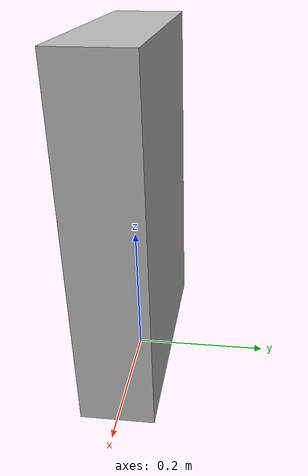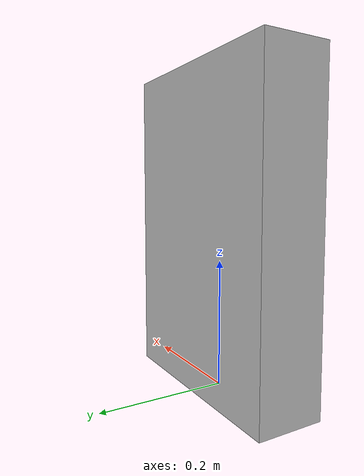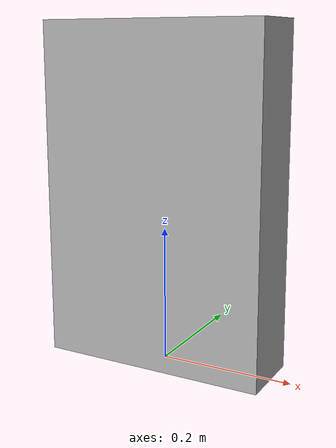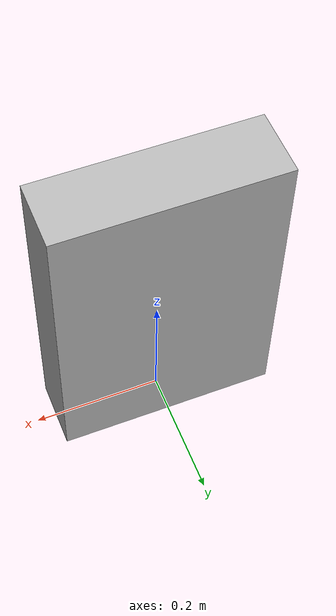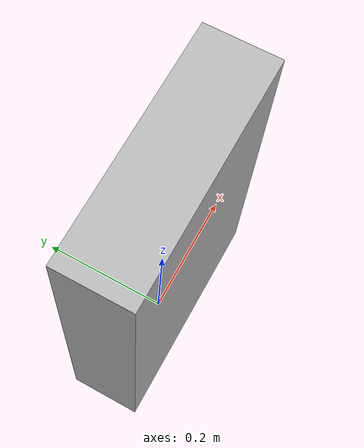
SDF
<sdf version="1.4">
  <model name="cereal_bran_bruds">
    <static>0</static>
    <link name="link">

      <collision name="colision1">
        <pose>0 0 0.25 0 0 0</pose>
        <geometry>
          <mesh>
            <uri>model://cereal_bran_bruds/meshes/cereal_bran_bruds.dae</uri>
	    <scale> 1 1 1 </scale>
          </mesh>
        </geometry>
        <surface>
          <bounce />
          <friction>
            <ode />
          </friction>
          <contact>
            <ode />
          </contact>
        </surface>
      </collision>

      <visual name="visual1">
        <pose>0 0 0.25 0 0 0</pose>
        <geometry>
          <mesh>
            <uri>model://cereal_bran_bruds/meshes/cereal_bran_bruds.dae</uri>
	    <scale> 1 1 1 </scale>
          </mesh>
        </geometry>
      </visual>

      <velocity_decay>
        <linear>0.000000</linear>
        <angular>0.000000</angular>
      </velocity_decay>
      <self_collide>0</self_collide>
      <kinematic>0</kinematic>
      <gravity>1</gravity>
    </link>
  </model>
</sdf>
